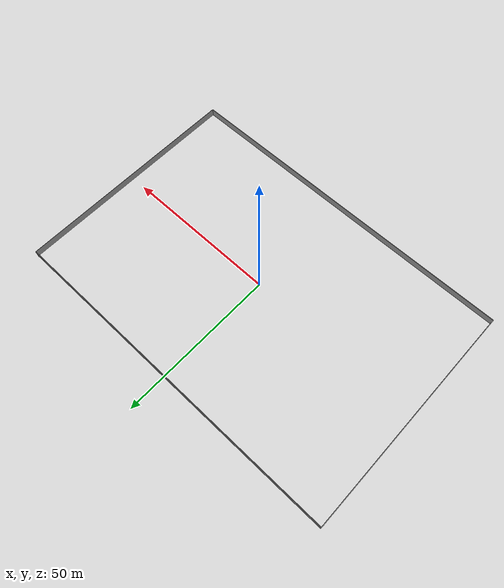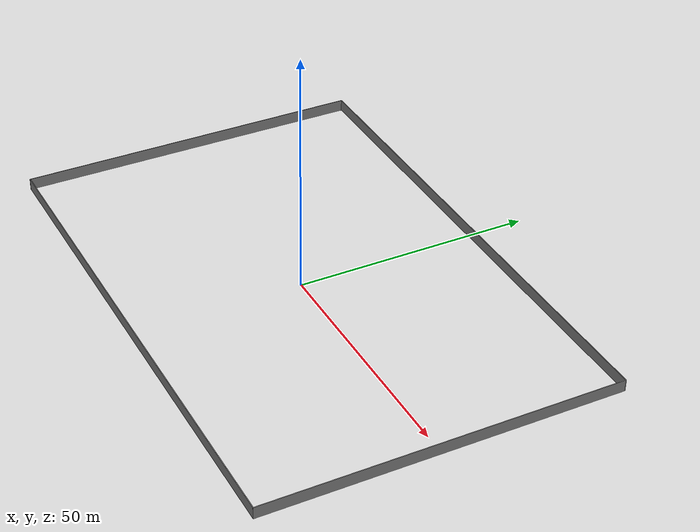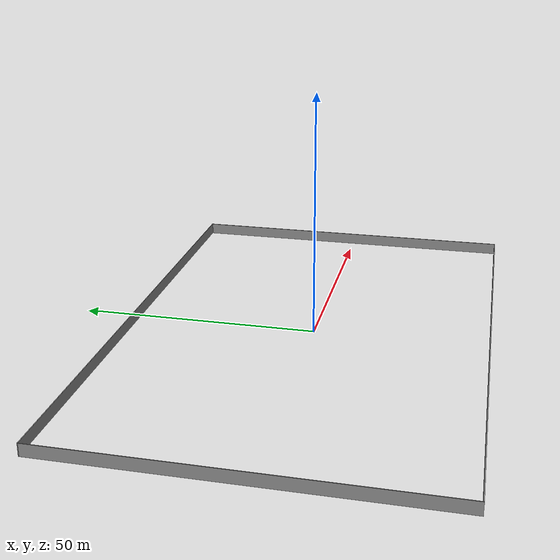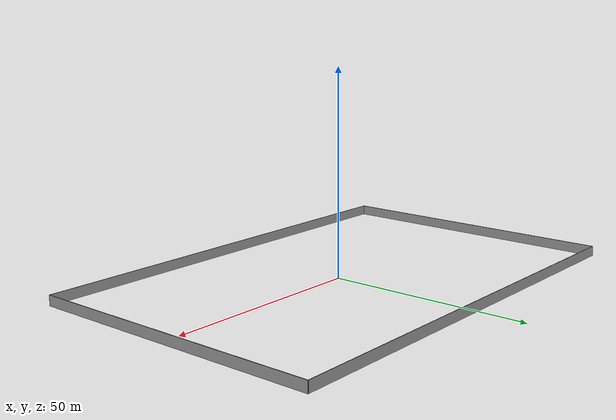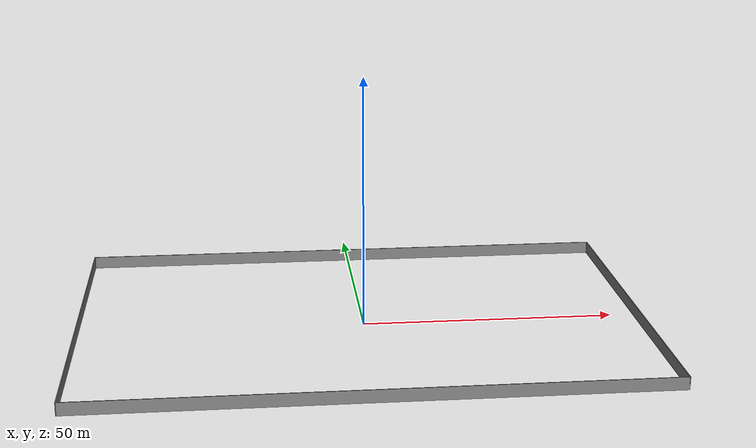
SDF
<?xml version='1.0'?>
<sdf version='1.7'>
  <model name='micropolis1'>
    <pose>-0.653694 1.07138 0 0 -0 0</pose>
    <link name='Wall_6'>
      <collision name='Wall_6_Collision'>
        <geometry>
          <box>
            <size>74 0.15 2.5</size>
          </box>
        </geometry>
        <pose>0 0 1.25 0 -0 0</pose>
      </collision>
      <visual name='Wall_6_Visual'>
        <pose>0 0 1.25 0 -0 0</pose>
        <geometry>
          <box>
            <size>74 0.15 2.5</size>
          </box>
        </geometry>
        <material>
          <script>
            <uri>file://media/materials/scripts/gazebo.material</uri>
            <name>Gazebo/Grey</name>
          </script>
          <ambient>1 1 1 1</ambient>
        </material>
        <meta>
          <layer>0</layer>
        </meta>
      </visual>
      <pose>-55.425 -1e-06 0 0 -0 -1.5708</pose>
    </link>
    <link name='Wall_7'>
      <collision name='Wall_7_Collision'>
        <geometry>
          <box>
            <size>111 0.15 2.5</size>
          </box>
        </geometry>
        <pose>0 0 1.25 0 -0 0</pose>
      </collision>
      <visual name='Wall_7_Visual'>
        <pose>0 0 1.25 0 -0 0</pose>
        <geometry>
          <box>
            <size>111 0.15 2.5</size>
          </box>
        </geometry>
        <material>
          <script>
            <uri>file://media/materials/scripts/gazebo.material</uri>
            <name>Gazebo/Grey</name>
          </script>
          <ambient>1 1 1 1</ambient>
        </material>
        <meta>
          <layer>0</layer>
        </meta>
      </visual>
      <pose>1e-06 -36.925 0 0 -0 0</pose>
    </link>
    <link name='Wall_8'>
      <collision name='Wall_8_Collision'>
        <geometry>
          <box>
            <size>74 0.15 2.5</size>
          </box>
        </geometry>
        <pose>0 0 1.25 0 -0 0</pose>
      </collision>
      <visual name='Wall_8_Visual'>
        <pose>0 0 1.25 0 -0 0</pose>
        <geometry>
          <box>
            <size>74 0.15 2.5</size>
          </box>
        </geometry>
        <material>
          <script>
            <uri>file://media/materials/scripts/gazebo.material</uri>
            <name>Gazebo/Grey</name>
          </script>
          <ambient>1 1 1 1</ambient>
        </material>
        <meta>
          <layer>0</layer>
        </meta>
      </visual>
      <pose>55.425 -1e-06 0 0 -0 1.5708</pose>
    </link>
    <link name='Wall_9'>
      <collision name='Wall_9_Collision'>
        <geometry>
          <box>
            <size>111 0.15 2.5</size>
          </box>
        </geometry>
        <pose>0 0 1.25 0 -0 0</pose>
      </collision>
      <visual name='Wall_9_Visual'>
        <pose>0 0 1.25 0 -0 0</pose>
        <geometry>
          <box>
            <size>111 0.15 2.5</size>
          </box>
        </geometry>
        <material>
          <script>
            <uri>file://media/materials/scripts/gazebo.material</uri>
            <name>Gazebo/Grey</name>
          </script>
          <ambient>1 1 1 1</ambient>
        </material>
        <meta>
          <layer>0</layer>
        </meta>
      </visual>
      <pose>1e-06 36.925 0 0 -0 3.14159</pose>
    </link>
    <static>1</static>
  </model>
</sdf>
